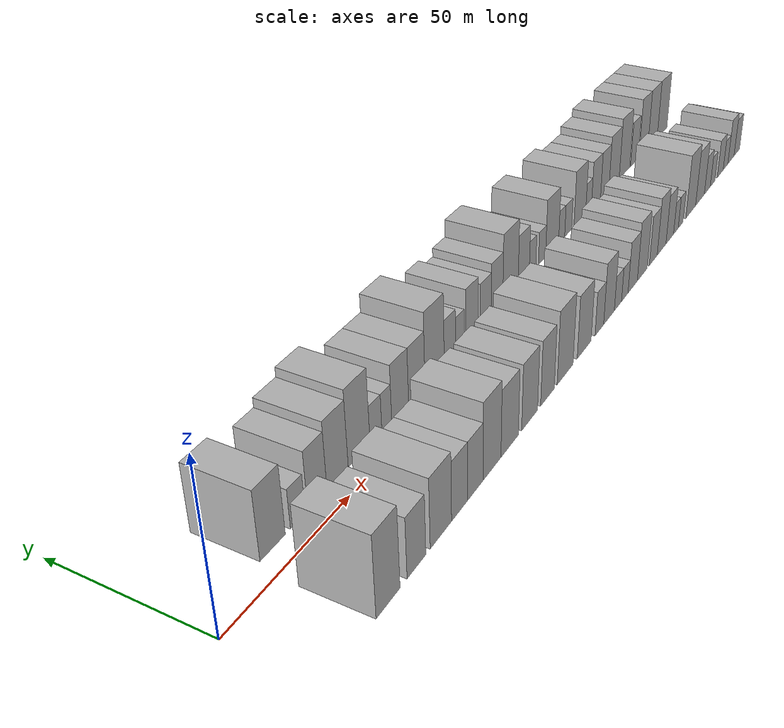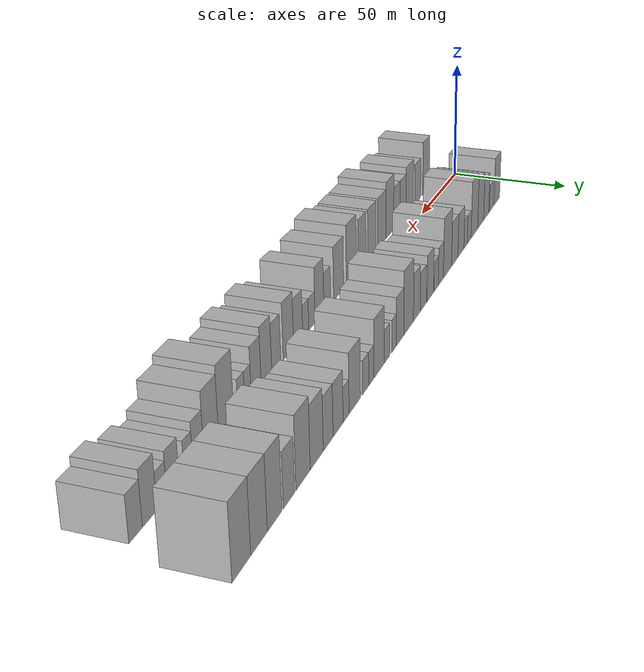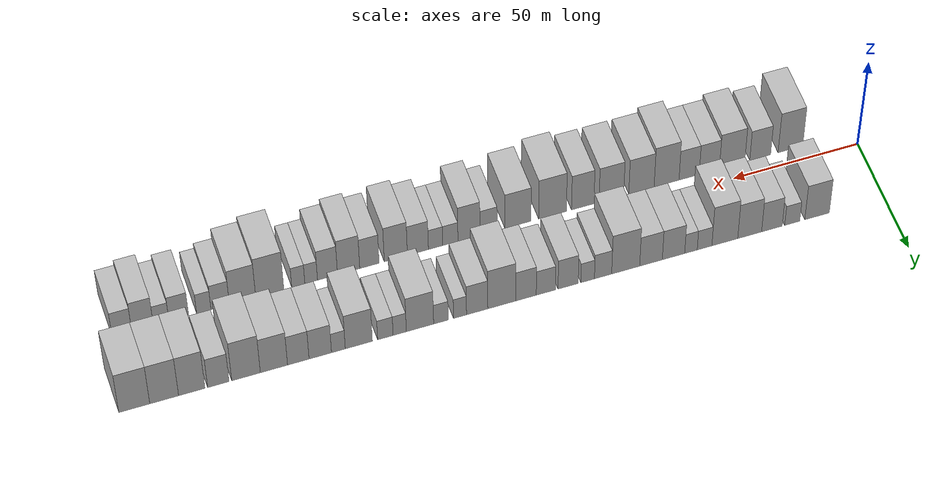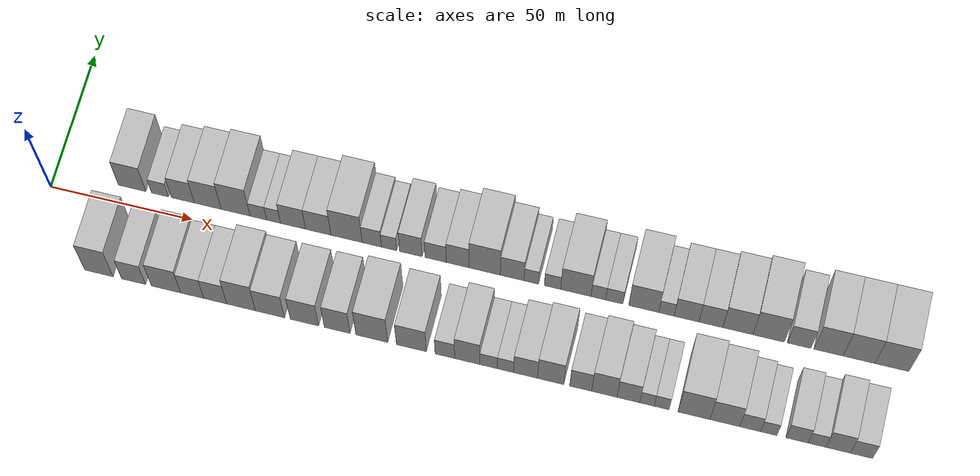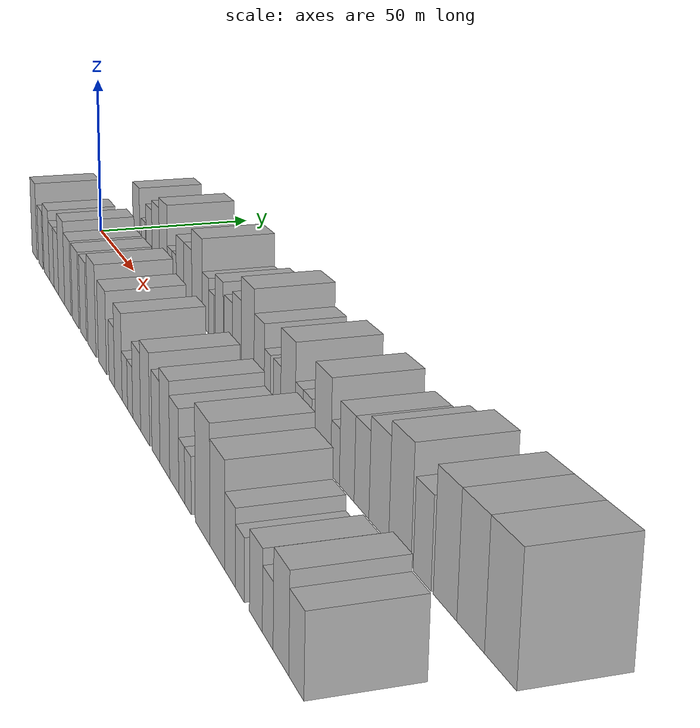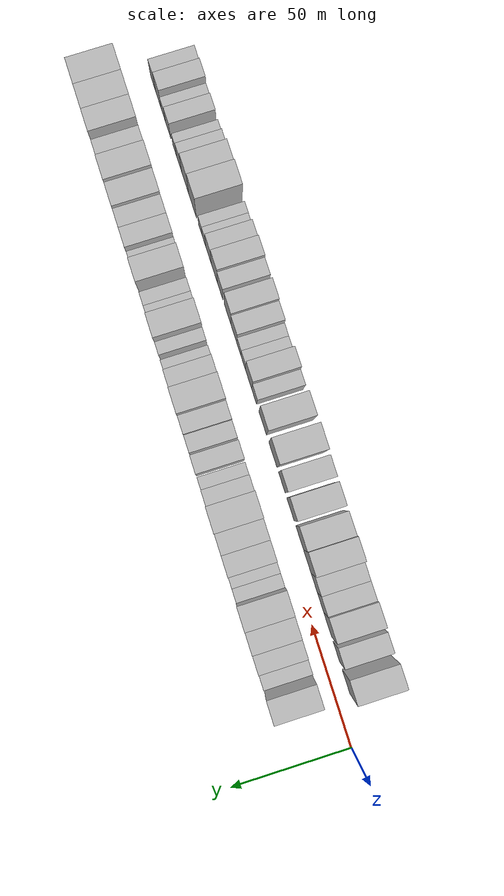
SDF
<sdf version="1.6">
 <world name="default">
  <scene>
   <sky><clouds><speed>12</speed></clouds></sky>
   <ambient>0.4 0.4 0.4 1</ambient>
   <background>0.7 0.7 0.7 1</background>
   <shadows>1</shadows>
  </scene>
  <gravity>0 0 -9.8066</gravity>
  <magnetic_field>6e-06 2.3e-05 -4.2e-05</magnetic_field>
  <physics default="0" name="default_physics" type="ode">
   <ode>
    <solver>
     <type>quick</type>
     <iters>10</iters>
     <sor>1.0</sor>
     <use_dynamic_moi_rescaling>0</use_dynamic_moi_rescaling>
    </solver>
    <constraints>
     <cfm>0</cfm>
     <erp>0.2</erp>
     <contact_max_correcting_vel>100</contact_max_correcting_vel>
     <contact_surface_layer>0.001</contact_surface_layer>
    </constraints>
   </ode>
   <max_step_size>0.004</max_step_size>
   <real_time_factor>1</real_time_factor>
   <real_time_update_rate>250</real_time_update_rate>
  </physics>
  <light name="sun" type="directional">
   <pose>0 0 10 0 0 0</pose>
   <diffuse>0.8 0.8 0.8 1</diffuse>
   <specular>0.2 0.2 0.2 1</specular>
   <attenuation>
    <range>1000</range>
    <constant>0.9</constant>
    <linear>0.01</linear>
    <quadratic>0.001</quadratic>
   </attenuation>
   <direction>-0.5 0.1 -0.9</direction>
  </light>
  <model name="building_1">
   <static>1</static>
   <pose>26.8678 16.0000 0 0.000000 0.000000 1.570796</pose>
   <link name="link">
    <pose>0 0 10.50 0 0 0</pose>
    <collision name="collision"><geometry><box><size>20.0000 9.7355 21.0000</size></box></geometry></collision>
    <visual name="visual">
     <cast_shadows>0</cast_shadows>
     <geometry><box><size>20.0000 9.7355 21.0000</size></box></geometry>
     <material>
      <script>
       <uri>model://HANNAS_wall/materials/scripts</uri>
       <uri>model://HANNAS_wall/materials/textures</uri>
       <name>vrc/HANNAS_wall</name>
      </script>
     </material>
    </visual>
   </link>
  </model>
  <model name="building_2">
   <static>1</static>
   <pose>36.7343 16.0000 0 0.000000 0.000000 1.570796</pose>
   <link name="link">
    <pose>0 0 6.00 0 0 0</pose>
    <collision name="collision"><geometry><box><size>20.0000 5.9977 12.0000</size></box></geometry></collision>
    <visual name="visual">
     <cast_shadows>0</cast_shadows>
     <geometry><box><size>20.0000 5.9977 12.0000</size></box></geometry>
     <material>
      <script>
       <uri>model://HANNAS_wall/materials/scripts</uri>
       <uri>model://HANNAS_wall/materials/textures</uri>
       <name>vrc/HANNAS_wall</name>
      </script>
     </material>
    </visual>
   </link>
  </model>
  <model name="building_3">
   <static>1</static>
   <pose>44.8047 16.0000 0 0.000000 0.000000 1.570796</pose>
   <link name="link">
    <pose>0 0 9.00 0 0 0</pose>
    <collision name="collision"><geometry><box><size>20.0000 8.1430 18.0000</size></box></geometry></collision>
    <visual name="visual">
     <cast_shadows>0</cast_shadows>
     <geometry><box><size>20.0000 8.1430 18.0000</size></box></geometry>
     <material>
      <script>
       <uri>model://HANNAS_wall/materials/scripts</uri>
       <uri>model://HANNAS_wall/materials/textures</uri>
       <name>vrc/HANNAS_wall</name>
      </script>
     </material>
    </visual>
   </link>
  </model>
  <model name="building_4">
   <static>1</static>
   <pose>53.6016 16.0000 0 0.000000 0.000000 1.570796</pose>
   <link name="link">
    <pose>0 0 10.50 0 0 0</pose>
    <collision name="collision"><geometry><box><size>20.0000 9.4507 21.0000</size></box></geometry></collision>
    <visual name="visual">
     <cast_shadows>0</cast_shadows>
     <geometry><box><size>20.0000 9.4507 21.0000</size></box></geometry>
     <material>
      <script>
       <uri>model://HANNAS_wall/materials/scripts</uri>
       <uri>model://HANNAS_wall/materials/textures</uri>
       <name>vrc/HANNAS_wall</name>
      </script>
     </material>
    </visual>
   </link>
  </model>
  <model name="building_5">
   <static>1</static>
   <pose>63.4222 16.0000 0 0.000000 0.000000 1.570796</pose>
   <link name="link">
    <pose>0 0 12.00 0 0 0</pose>
    <collision name="collision"><geometry><box><size>20.0000 10.1907 24.0000</size></box></geometry></collision>
    <visual name="visual">
     <cast_shadows>0</cast_shadows>
     <geometry><box><size>20.0000 10.1907 24.0000</size></box></geometry>
     <material>
      <script>
       <uri>model://HANNAS_wall/materials/scripts</uri>
       <uri>model://HANNAS_wall/materials/textures</uri>
       <name>vrc/HANNAS_wall</name>
      </script>
     </material>
    </visual>
   </link>
  </model>
  <model name="building_6">
   <static>1</static>
   <pose>71.3958 16.0000 0 0.000000 0.000000 1.570796</pose>
   <link name="link">
    <pose>0 0 6.00 0 0 0</pose>
    <collision name="collision"><geometry><box><size>20.0000 5.7564 12.0000</size></box></geometry></collision>
    <visual name="visual">
     <cast_shadows>0</cast_shadows>
     <geometry><box><size>20.0000 5.7564 12.0000</size></box></geometry>
     <material>
      <script>
       <uri>model://HANNAS_wall/materials/scripts</uri>
       <uri>model://HANNAS_wall/materials/textures</uri>
       <name>vrc/HANNAS_wall</name>
      </script>
     </material>
    </visual>
   </link>
  </model>
  <model name="building_7">
   <static>1</static>
   <pose>76.7380 16.0000 0 0.000000 0.000000 1.570796</pose>
   <link name="link">
    <pose>0 0 6.00 0 0 0</pose>
    <collision name="collision"><geometry><box><size>20.0000 4.9280 12.0000</size></box></geometry></collision>
    <visual name="visual">
     <cast_shadows>0</cast_shadows>
     <geometry><box><size>20.0000 4.9280 12.0000</size></box></geometry>
     <material>
      <script>
       <uri>model://HANNAS_wall/materials/scripts</uri>
       <uri>model://HANNAS_wall/materials/textures</uri>
       <name>vrc/HANNAS_wall</name>
      </script>
     </material>
    </visual>
   </link>
  </model>
  <model name="building_8">
   <static>1</static>
   <pose>83.5865 16.0000 0 0.000000 0.000000 1.570796</pose>
   <link name="link">
    <pose>0 0 9.00 0 0 0</pose>
    <collision name="collision"><geometry><box><size>20.0000 8.7689 18.0000</size></box></geometry></collision>
    <visual name="visual">
     <cast_shadows>0</cast_shadows>
     <geometry><box><size>20.0000 8.7689 18.0000</size></box></geometry>
     <material>
      <script>
       <uri>model://HANNAS_wall/materials/scripts</uri>
       <uri>model://HANNAS_wall/materials/textures</uri>
       <name>vrc/HANNAS_wall</name>
      </script>
     </material>
    </visual>
   </link>
  </model>
  <model name="building_9">
   <static>1</static>
   <pose>92.3989 16.0000 0 0.000000 0.000000 1.570796</pose>
   <link name="link">
    <pose>0 0 9.00 0 0 0</pose>
    <collision name="collision"><geometry><box><size>20.0000 8.8559 18.0000</size></box></geometry></collision>
    <visual name="visual">
     <cast_shadows>0</cast_shadows>
     <geometry><box><size>20.0000 8.8559 18.0000</size></box></geometry>
     <material>
      <script>
       <uri>model://HANNAS_wall/materials/scripts</uri>
       <uri>model://HANNAS_wall/materials/textures</uri>
       <name>vrc/HANNAS_wall</name>
      </script>
     </material>
    </visual>
   </link>
  </model>
  <model name="building_10">
   <static>1</static>
   <pose>102.2960 16.0000 0 0.000000 0.000000 1.570796</pose>
   <link name="link">
    <pose>0 0 12.00 0 0 0</pose>
    <collision name="collision"><geometry><box><size>20.0000 10.9383 24.0000</size></box></geometry></collision>
    <visual name="visual">
     <cast_shadows>0</cast_shadows>
     <geometry><box><size>20.0000 10.9383 24.0000</size></box></geometry>
     <material>
      <script>
       <uri>model://HANNAS_wall/materials/scripts</uri>
       <uri>model://HANNAS_wall/materials/textures</uri>
       <name>vrc/HANNAS_wall</name>
      </script>
     </material>
    </visual>
   </link>
  </model>
  <model name="building_11">
   <static>1</static>
   <pose>111.1189 16.0000 0 0.000000 0.000000 1.570796</pose>
   <link name="link">
    <pose>0 0 7.50 0 0 0</pose>
    <collision name="collision"><geometry><box><size>20.0000 6.7076 15.0000</size></box></geometry></collision>
    <visual name="visual">
     <cast_shadows>0</cast_shadows>
     <geometry><box><size>20.0000 6.7076 15.0000</size></box></geometry>
     <material>
      <script>
       <uri>model://HANNAS_wall/materials/scripts</uri>
       <uri>model://HANNAS_wall/materials/textures</uri>
       <name>vrc/HANNAS_wall</name>
      </script>
     </material>
    </visual>
   </link>
  </model>
  <model name="building_12">
   <static>1</static>
   <pose>117.1135 16.0000 0 0.000000 0.000000 1.570796</pose>
   <link name="link">
    <pose>0 0 6.00 0 0 0</pose>
    <collision name="collision"><geometry><box><size>20.0000 5.2814 12.0000</size></box></geometry></collision>
    <visual name="visual">
     <cast_shadows>0</cast_shadows>
     <geometry><box><size>20.0000 5.2814 12.0000</size></box></geometry>
     <material>
      <script>
       <uri>model://HANNAS_wall/materials/scripts</uri>
       <uri>model://HANNAS_wall/materials/textures</uri>
       <name>vrc/HANNAS_wall</name>
      </script>
     </material>
    </visual>
   </link>
  </model>
  <model name="building_13">
   <static>1</static>
   <pose>124.6767 16.0000 0 0.000000 0.000000 1.570796</pose>
   <link name="link">
    <pose>0 0 9.00 0 0 0</pose>
    <collision name="collision"><geometry><box><size>20.0000 7.8451 18.0000</size></box></geometry></collision>
    <visual name="visual">
     <cast_shadows>0</cast_shadows>
     <geometry><box><size>20.0000 7.8451 18.0000</size></box></geometry>
     <material>
      <script>
       <uri>model://HANNAS_wall/materials/scripts</uri>
       <uri>model://HANNAS_wall/materials/textures</uri>
       <name>vrc/HANNAS_wall</name>
      </script>
     </material>
    </visual>
   </link>
  </model>
  <model name="building_14">
   <static>1</static>
   <pose>133.3058 16.0000 0 0.000000 0.000000 1.570796</pose>
   <link name="link">
    <pose>0 0 7.50 0 0 0</pose>
    <collision name="collision"><geometry><box><size>20.0000 7.4131 15.0000</size></box></geometry></collision>
    <visual name="visual">
     <cast_shadows>0</cast_shadows>
     <geometry><box><size>20.0000 7.4131 15.0000</size></box></geometry>
     <material>
      <script>
       <uri>model://HANNAS_wall/materials/scripts</uri>
       <uri>model://HANNAS_wall/materials/textures</uri>
       <name>vrc/HANNAS_wall</name>
      </script>
     </material>
    </visual>
   </link>
  </model>
  <model name="building_15">
   <static>1</static>
   <pose>140.9265 16.0000 0 0.000000 0.000000 1.570796</pose>
   <link name="link">
    <pose>0 0 9.00 0 0 0</pose>
    <collision name="collision"><geometry><box><size>20.0000 7.8284 18.0000</size></box></geometry></collision>
    <visual name="visual">
     <cast_shadows>0</cast_shadows>
     <geometry><box><size>20.0000 7.8284 18.0000</size></box></geometry>
     <material>
      <script>
       <uri>model://HANNAS_wall/materials/scripts</uri>
       <uri>model://HANNAS_wall/materials/textures</uri>
       <name>vrc/HANNAS_wall</name>
      </script>
     </material>
    </visual>
   </link>
  </model>
  <model name="building_16">
   <static>1</static>
   <pose>150.2544 16.0000 0 0.000000 0.000000 1.570796</pose>
   <link name="link">
    <pose>0 0 12.00 0 0 0</pose>
    <collision name="collision"><geometry><box><size>20.0000 10.8273 24.0000</size></box></geometry></collision>
    <visual name="visual">
     <cast_shadows>0</cast_shadows>
     <geometry><box><size>20.0000 10.8273 24.0000</size></box></geometry>
     <material>
      <script>
       <uri>model://HANNAS_wall/materials/scripts</uri>
       <uri>model://HANNAS_wall/materials/textures</uri>
       <name>vrc/HANNAS_wall</name>
      </script>
     </material>
    </visual>
   </link>
  </model>
  <model name="building_17">
   <static>1</static>
   <pose>159.7544 16.0000 0 0.000000 0.000000 1.570796</pose>
   <link name="link">
    <pose>0 0 9.00 0 0 0</pose>
    <collision name="collision"><geometry><box><size>20.0000 8.1728 18.0000</size></box></geometry></collision>
    <visual name="visual">
     <cast_shadows>0</cast_shadows>
     <geometry><box><size>20.0000 8.1728 18.0000</size></box></geometry>
     <material>
      <script>
       <uri>model://HANNAS_wall/materials/scripts</uri>
       <uri>model://HANNAS_wall/materials/textures</uri>
       <name>vrc/HANNAS_wall</name>
      </script>
     </material>
    </visual>
   </link>
  </model>
  <model name="building_18">
   <static>1</static>
   <pose>166.3292 16.0000 0 0.000000 0.000000 1.570796</pose>
   <link name="link">
    <pose>0 0 6.00 0 0 0</pose>
    <collision name="collision"><geometry><box><size>20.0000 4.9768 12.0000</size></box></geometry></collision>
    <visual name="visual">
     <cast_shadows>0</cast_shadows>
     <geometry><box><size>20.0000 4.9768 12.0000</size></box></geometry>
     <material>
      <script>
       <uri>model://HANNAS_wall/materials/scripts</uri>
       <uri>model://HANNAS_wall/materials/textures</uri>
       <name>vrc/HANNAS_wall</name>
      </script>
     </material>
    </visual>
   </link>
  </model>
  <model name="building_19">
   <static>1</static>
   <pose>173.6158 16.0000 0 0.000000 0.000000 1.570796</pose>
   <link name="link">
    <pose>0 0 6.00 0 0 0</pose>
    <collision name="collision"><geometry><box><size>20.0000 5.5964 12.0000</size></box></geometry></collision>
    <visual name="visual">
     <cast_shadows>0</cast_shadows>
     <geometry><box><size>20.0000 5.5964 12.0000</size></box></geometry>
     <material>
      <script>
       <uri>model://HANNAS_wall/materials/scripts</uri>
       <uri>model://HANNAS_wall/materials/textures</uri>
       <name>vrc/HANNAS_wall</name>
      </script>
     </material>
    </visual>
   </link>
  </model>
  <model name="building_20">
   <static>1</static>
   <pose>181.6294 16.0000 0 0.000000 0.000000 1.570796</pose>
   <link name="link">
    <pose>0 0 10.50 0 0 0</pose>
    <collision name="collision"><geometry><box><size>20.0000 10.4307 21.0000</size></box></geometry></collision>
    <visual name="visual">
     <cast_shadows>0</cast_shadows>
     <geometry><box><size>20.0000 10.4307 21.0000</size></box></geometry>
     <material>
      <script>
       <uri>model://HANNAS_wall/materials/scripts</uri>
       <uri>model://HANNAS_wall/materials/textures</uri>
       <name>vrc/HANNAS_wall</name>
      </script>
     </material>
    </visual>
   </link>
  </model>
  <model name="building_21">
   <static>1</static>
   <pose>189.3610 16.0000 0 0.000000 0.000000 1.570796</pose>
   <link name="link">
    <pose>0 0 6.00 0 0 0</pose>
    <collision name="collision"><geometry><box><size>20.0000 5.0324 12.0000</size></box></geometry></collision>
    <visual name="visual">
     <cast_shadows>0</cast_shadows>
     <geometry><box><size>20.0000 5.0324 12.0000</size></box></geometry>
     <material>
      <script>
       <uri>model://HANNAS_wall/materials/scripts</uri>
       <uri>model://HANNAS_wall/materials/textures</uri>
       <name>vrc/HANNAS_wall</name>
      </script>
     </material>
    </visual>
   </link>
  </model>
  <model name="building_22">
   <static>1</static>
   <pose>194.8133 16.0000 0 0.000000 0.000000 1.570796</pose>
   <link name="link">
    <pose>0 0 6.00 0 0 0</pose>
    <collision name="collision"><geometry><box><size>20.0000 5.8723 12.0000</size></box></geometry></collision>
    <visual name="visual">
     <cast_shadows>0</cast_shadows>
     <geometry><box><size>20.0000 5.8723 12.0000</size></box></geometry>
     <material>
      <script>
       <uri>model://HANNAS_wall/materials/scripts</uri>
       <uri>model://HANNAS_wall/materials/textures</uri>
       <name>vrc/HANNAS_wall</name>
      </script>
     </material>
    </visual>
   </link>
  </model>
  <model name="building_23">
   <static>1</static>
   <pose>204.8770 16.0000 0 0.000000 0.000000 1.570796</pose>
   <link name="link">
    <pose>0 0 10.50 0 0 0</pose>
    <collision name="collision"><geometry><box><size>20.0000 10.2549 21.0000</size></box></geometry></collision>
    <visual name="visual">
     <cast_shadows>0</cast_shadows>
     <geometry><box><size>20.0000 10.2549 21.0000</size></box></geometry>
     <material>
      <script>
       <uri>model://HANNAS_wall/materials/scripts</uri>
       <uri>model://HANNAS_wall/materials/textures</uri>
       <name>vrc/HANNAS_wall</name>
      </script>
     </material>
    </visual>
   </link>
  </model>
  <model name="building_24">
   <static>1</static>
   <pose>212.6080 16.0000 0 0.000000 0.000000 1.570796</pose>
   <link name="link">
    <pose>0 0 6.00 0 0 0</pose>
    <collision name="collision"><geometry><box><size>20.0000 5.2071 12.0000</size></box></geometry></collision>
    <visual name="visual">
     <cast_shadows>0</cast_shadows>
     <geometry><box><size>20.0000 5.2071 12.0000</size></box></geometry>
     <material>
      <script>
       <uri>model://HANNAS_wall/materials/scripts</uri>
       <uri>model://HANNAS_wall/materials/textures</uri>
       <name>vrc/HANNAS_wall</name>
      </script>
     </material>
    </visual>
   </link>
  </model>
  <model name="building_25">
   <static>1</static>
   <pose>219.4483 16.0000 0 0.000000 0.000000 1.570796</pose>
   <link name="link">
    <pose>0 0 9.00 0 0 0</pose>
    <collision name="collision"><geometry><box><size>20.0000 8.4737 18.0000</size></box></geometry></collision>
    <visual name="visual">
     <cast_shadows>0</cast_shadows>
     <geometry><box><size>20.0000 8.4737 18.0000</size></box></geometry>
     <material>
      <script>
       <uri>model://HANNAS_wall/materials/scripts</uri>
       <uri>model://HANNAS_wall/materials/textures</uri>
       <name>vrc/HANNAS_wall</name>
      </script>
     </material>
    </visual>
   </link>
  </model>
  <model name="building_26">
   <static>1</static>
   <pose>227.7353 16.0000 0 0.000000 0.000000 1.570796</pose>
   <link name="link">
    <pose>0 0 9.00 0 0 0</pose>
    <collision name="collision"><geometry><box><size>20.0000 8.1002 18.0000</size></box></geometry></collision>
    <visual name="visual">
     <cast_shadows>0</cast_shadows>
     <geometry><box><size>20.0000 8.1002 18.0000</size></box></geometry>
     <material>
      <script>
       <uri>model://HANNAS_wall/materials/scripts</uri>
       <uri>model://HANNAS_wall/materials/textures</uri>
       <name>vrc/HANNAS_wall</name>
      </script>
     </material>
    </visual>
   </link>
  </model>
  <model name="building_27">
   <static>1</static>
   <pose>236.8950 16.0000 0 0.000000 0.000000 1.570796</pose>
   <link name="link">
    <pose>0 0 10.50 0 0 0</pose>
    <collision name="collision"><geometry><box><size>20.0000 10.2192 21.0000</size></box></geometry></collision>
    <visual name="visual">
     <cast_shadows>0</cast_shadows>
     <geometry><box><size>20.0000 10.2192 21.0000</size></box></geometry>
     <material>
      <script>
       <uri>model://HANNAS_wall/materials/scripts</uri>
       <uri>model://HANNAS_wall/materials/textures</uri>
       <name>vrc/HANNAS_wall</name>
      </script>
     </material>
    </visual>
   </link>
  </model>
  <model name="building_28">
   <static>1</static>
   <pose>247.3557 16.0000 0 0.000000 0.000000 1.570796</pose>
   <link name="link">
    <pose>0 0 12.00 0 0 0</pose>
    <collision name="collision"><geometry><box><size>20.0000 10.7022 24.0000</size></box></geometry></collision>
    <visual name="visual">
     <cast_shadows>0</cast_shadows>
     <geometry><box><size>20.0000 10.7022 24.0000</size></box></geometry>
     <material>
      <script>
       <uri>model://HANNAS_wall/materials/scripts</uri>
       <uri>model://HANNAS_wall/materials/textures</uri>
       <name>vrc/HANNAS_wall</name>
      </script>
     </material>
    </visual>
   </link>
  </model>
  <model name="building_29">
   <static>1</static>
   <pose>257.7020 16.0000 0 0.000000 0.000000 1.570796</pose>
   <link name="link">
    <pose>0 0 9.00 0 0 0</pose>
    <collision name="collision"><geometry><box><size>20.0000 7.9903 18.0000</size></box></geometry></collision>
    <visual name="visual">
     <cast_shadows>0</cast_shadows>
     <geometry><box><size>20.0000 7.9903 18.0000</size></box></geometry>
     <material>
      <script>
       <uri>model://HANNAS_wall/materials/scripts</uri>
       <uri>model://HANNAS_wall/materials/textures</uri>
       <name>vrc/HANNAS_wall</name>
      </script>
     </material>
    </visual>
   </link>
  </model>
  <model name="building_30">
   <static>1</static>
   <pose>267.6080 16.0000 0 0.000000 0.000000 1.570796</pose>
   <link name="link">
    <pose>0 0 12.00 0 0 0</pose>
    <collision name="collision"><geometry><box><size>20.0000 9.8217 24.0000</size></box></geometry></collision>
    <visual name="visual">
     <cast_shadows>0</cast_shadows>
     <geometry><box><size>20.0000 9.8217 24.0000</size></box></geometry>
     <material>
      <script>
       <uri>model://HANNAS_wall/materials/scripts</uri>
       <uri>model://HANNAS_wall/materials/textures</uri>
       <name>vrc/HANNAS_wall</name>
      </script>
     </material>
    </visual>
   </link>
  </model>
  <model name="building_31">
   <static>1</static>
   <pose>277.8639 16.0000 0 0.000000 0.000000 1.570796</pose>
   <link name="link">
    <pose>0 0 12.00 0 0 0</pose>
    <collision name="collision"><geometry><box><size>20.0000 10.6902 24.0000</size></box></geometry></collision>
    <visual name="visual">
     <cast_shadows>0</cast_shadows>
     <geometry><box><size>20.0000 10.6902 24.0000</size></box></geometry>
     <material>
      <script>
       <uri>model://HANNAS_wall/materials/scripts</uri>
       <uri>model://HANNAS_wall/materials/textures</uri>
       <name>vrc/HANNAS_wall</name>
      </script>
     </material>
    </visual>
   </link>
  </model>
  <model name="building_32">
   <static>1</static>
   <pose>288.9384 16.0000 0 0.000000 0.000000 1.570796</pose>
   <link name="link">
    <pose>0 0 12.00 0 0 0</pose>
    <collision name="collision"><geometry><box><size>20.0000 11.4587 24.0000</size></box></geometry></collision>
    <visual name="visual">
     <cast_shadows>0</cast_shadows>
     <geometry><box><size>20.0000 11.4587 24.0000</size></box></geometry>
     <material>
      <script>
       <uri>model://HANNAS_wall/materials/scripts</uri>
       <uri>model://HANNAS_wall/materials/textures</uri>
       <name>vrc/HANNAS_wall</name>
      </script>
     </material>
    </visual>
   </link>
  </model>
  <model name="building_33">
   <static>1</static>
   <pose>24.9753 -16.0000 0 0.000000 0.000000 1.570796</pose>
   <link name="link">
    <pose>0 0 12.00 0 0 0</pose>
    <collision name="collision"><geometry><box><size>20.0000 9.9507 24.0000</size></box></geometry></collision>
    <visual name="visual">
     <cast_shadows>0</cast_shadows>
     <geometry><box><size>20.0000 9.9507 24.0000</size></box></geometry>
     <material>
      <script>
       <uri>model://HANNAS_wall/materials/scripts</uri>
       <uri>model://HANNAS_wall/materials/textures</uri>
       <name>vrc/HANNAS_wall</name>
      </script>
     </material>
    </visual>
   </link>
  </model>
  <model name="building_34">
   <static>1</static>
   <pose>37.1397 -16.0000 0 0.000000 0.000000 1.570796</pose>
   <link name="link">
    <pose>0 0 9.00 0 0 0</pose>
    <collision name="collision"><geometry><box><size>20.0000 8.3780 18.0000</size></box></geometry></collision>
    <visual name="visual">
     <cast_shadows>0</cast_shadows>
     <geometry><box><size>20.0000 8.3780 18.0000</size></box></geometry>
     <material>
      <script>
       <uri>model://HANNAS_wall/materials/scripts</uri>
       <uri>model://HANNAS_wall/materials/textures</uri>
       <name>vrc/HANNAS_wall</name>
      </script>
     </material>
    </visual>
   </link>
  </model>
  <model name="building_35">
   <static>1</static>
   <pose>48.4142 -16.0000 0 0.000000 0.000000 1.570796</pose>
   <link name="link">
    <pose>0 0 10.50 0 0 0</pose>
    <collision name="collision"><geometry><box><size>20.0000 10.1710 21.0000</size></box></geometry></collision>
    <visual name="visual">
     <cast_shadows>0</cast_shadows>
     <geometry><box><size>20.0000 10.1710 21.0000</size></box></geometry>
     <material>
      <script>
       <uri>model://HANNAS_wall/materials/scripts</uri>
       <uri>model://HANNAS_wall/materials/textures</uri>
       <name>vrc/HANNAS_wall</name>
      </script>
     </material>
    </visual>
   </link>
  </model>
  <model name="building_36">
   <static>1</static>
   <pose>57.5321 -16.0000 0 0.000000 0.000000 1.570796</pose>
   <link name="link">
    <pose>0 0 9.00 0 0 0</pose>
    <collision name="collision"><geometry><box><size>20.0000 8.0647 18.0000</size></box></geometry></collision>
    <visual name="visual">
     <cast_shadows>0</cast_shadows>
     <geometry><box><size>20.0000 8.0647 18.0000</size></box></geometry>
     <material>
      <script>
       <uri>model://HANNAS_wall/materials/scripts</uri>
       <uri>model://HANNAS_wall/materials/textures</uri>
       <name>vrc/HANNAS_wall</name>
      </script>
     </material>
    </visual>
   </link>
  </model>
  <model name="building_37">
   <static>1</static>
   <pose>65.5842 -16.0000 0 0.000000 0.000000 1.570796</pose>
   <link name="link">
    <pose>0 0 9.00 0 0 0</pose>
    <collision name="collision"><geometry><box><size>20.0000 8.0394 18.0000</size></box></geometry></collision>
    <visual name="visual">
     <cast_shadows>0</cast_shadows>
     <geometry><box><size>20.0000 8.0394 18.0000</size></box></geometry>
     <material>
      <script>
       <uri>model://HANNAS_wall/materials/scripts</uri>
       <uri>model://HANNAS_wall/materials/textures</uri>
       <name>vrc/HANNAS_wall</name>
      </script>
     </material>
    </visual>
   </link>
  </model>
  <model name="building_38">
   <static>1</static>
   <pose>74.5528 -16.0000 0 0.000000 0.000000 1.570796</pose>
   <link name="link">
    <pose>0 0 12.00 0 0 0</pose>
    <collision name="collision"><geometry><box><size>20.0000 9.8979 24.0000</size></box></geometry></collision>
    <visual name="visual">
     <cast_shadows>0</cast_shadows>
     <geometry><box><size>20.0000 9.8979 24.0000</size></box></geometry>
     <material>
      <script>
       <uri>model://HANNAS_wall/materials/scripts</uri>
       <uri>model://HANNAS_wall/materials/textures</uri>
       <name>vrc/HANNAS_wall</name>
      </script>
     </material>
    </visual>
   </link>
  </model>
  <model name="building_39">
   <static>1</static>
   <pose>84.5356 -16.0000 0 0.000000 0.000000 1.570796</pose>
   <link name="link">
    <pose>0 0 10.50 0 0 0</pose>
    <collision name="collision"><geometry><box><size>20.0000 10.0675 21.0000</size></box></geometry></collision>
    <visual name="visual">
     <cast_shadows>0</cast_shadows>
     <geometry><box><size>20.0000 10.0675 21.0000</size></box></geometry>
     <material>
      <script>
       <uri>model://HANNAS_wall/materials/scripts</uri>
       <uri>model://HANNAS_wall/materials/textures</uri>
       <name>vrc/HANNAS_wall</name>
      </script>
     </material>
    </visual>
   </link>
  </model>
  <model name="building_40">
   <static>1</static>
   <pose>96.4479 -16.0000 0 0.000000 0.000000 1.570796</pose>
   <link name="link">
    <pose>0 0 10.50 0 0 0</pose>
    <collision name="collision"><geometry><box><size>20.0000 9.7572 21.0000</size></box></geometry></collision>
    <visual name="visual">
     <cast_shadows>0</cast_shadows>
     <geometry><box><size>20.0000 9.7572 21.0000</size></box></geometry>
     <material>
      <script>
       <uri>model://HANNAS_wall/materials/scripts</uri>
       <uri>model://HANNAS_wall/materials/textures</uri>
       <name>vrc/HANNAS_wall</name>
      </script>
     </material>
    </visual>
   </link>
  </model>
  <model name="building_41">
   <static>1</static>
   <pose>107.7494 -16.0000 0 0.000000 0.000000 1.570796</pose>
   <link name="link">
    <pose>0 0 10.50 0 0 0</pose>
    <collision name="collision"><geometry><box><size>20.0000 8.8458 21.0000</size></box></geometry></collision>
    <visual name="visual">
     <cast_shadows>0</cast_shadows>
     <geometry><box><size>20.0000 8.8458 21.0000</size></box></geometry>
     <material>
      <script>
       <uri>model://HANNAS_wall/materials/scripts</uri>
       <uri>model://HANNAS_wall/materials/textures</uri>
       <name>vrc/HANNAS_wall</name>
      </script>
     </material>
    </visual>
   </link>
  </model>
  <model name="building_42">
   <static>1</static>
   <pose>119.6240 -16.0000 0 0.000000 0.000000 1.570796</pose>
   <link name="link">
    <pose>0 0 12.00 0 0 0</pose>
    <collision name="collision"><geometry><box><size>20.0000 10.9033 24.0000</size></box></geometry></collision>
    <visual name="visual">
     <cast_shadows>0</cast_shadows>
     <geometry><box><size>20.0000 10.9033 24.0000</size></box></geometry>
     <material>
      <script>
       <uri>model://HANNAS_wall/materials/scripts</uri>
       <uri>model://HANNAS_wall/materials/textures</uri>
       <name>vrc/HANNAS_wall</name>
      </script>
     </material>
    </visual>
   </link>
  </model>
  <model name="building_43">
   <static>1</static>
   <pose>133.1922 -16.0000 0 0.000000 0.000000 1.570796</pose>
   <link name="link">
    <pose>0 0 10.50 0 0 0</pose>
    <collision name="collision"><geometry><box><size>20.0000 10.2332 21.0000</size></box></geometry></collision>
    <visual name="visual">
     <cast_shadows>0</cast_shadows>
     <geometry><box><size>20.0000 10.2332 21.0000</size></box></geometry>
     <material>
      <script>
       <uri>model://HANNAS_wall/materials/scripts</uri>
       <uri>model://HANNAS_wall/materials/textures</uri>
       <name>vrc/HANNAS_wall</name>
      </script>
     </material>
    </visual>
   </link>
  </model>
  <model name="building_44">
   <static>1</static>
   <pose>144.6435 -16.0000 0 0.000000 0.000000 1.570796</pose>
   <link name="link">
    <pose>0 0 7.50 0 0 0</pose>
    <collision name="collision"><geometry><box><size>20.0000 6.6694 15.0000</size></box></geometry></collision>
    <visual name="visual">
     <cast_shadows>0</cast_shadows>
     <geometry><box><size>20.0000 6.6694 15.0000</size></box></geometry>
     <material>
      <script>
       <uri>model://HANNAS_wall/materials/scripts</uri>
       <uri>model://HANNAS_wall/materials/textures</uri>
       <name>vrc/HANNAS_wall</name>
      </script>
     </material>
    </visual>
   </link>
  </model>
  <model name="building_45">
   <static>1</static>
   <pose>152.2699 -16.0000 0 0.000000 0.000000 1.570796</pose>
   <link name="link">
    <pose>0 0 10.50 0 0 0</pose>
    <collision name="collision"><geometry><box><size>20.0000 8.5835 21.0000</size></box></geometry></collision>
    <visual name="visual">
     <cast_shadows>0</cast_shadows>
     <geometry><box><size>20.0000 8.5835 21.0000</size></box></geometry>
     <material>
      <script>
       <uri>model://HANNAS_wall/materials/scripts</uri>
       <uri>model://HANNAS_wall/materials/textures</uri>
       <name>vrc/HANNAS_wall</name>
      </script>
     </material>
    </visual>
   </link>
  </model>
  <model name="building_46">
   <static>1</static>
   <pose>159.5276 -16.0000 0 0.000000 0.000000 1.570796</pose>
   <link name="link">
    <pose>0 0 6.00 0 0 0</pose>
    <collision name="collision"><geometry><box><size>20.0000 5.9319 12.0000</size></box></geometry></collision>
    <visual name="visual">
     <cast_shadows>0</cast_shadows>
     <geometry><box><size>20.0000 5.9319 12.0000</size></box></geometry>
     <material>
      <script>
       <uri>model://HANNAS_wall/materials/scripts</uri>
       <uri>model://HANNAS_wall/materials/textures</uri>
       <name>vrc/HANNAS_wall</name>
      </script>
     </material>
    </visual>
   </link>
  </model>
  <model name="building_47">
   <static>1</static>
   <pose>165.2591 -16.0000 0 0.000000 0.000000 1.570796</pose>
   <link name="link">
    <pose>0 0 6.00 0 0 0</pose>
    <collision name="collision"><geometry><box><size>20.0000 5.5311 12.0000</size></box></geometry></collision>
    <visual name="visual">
     <cast_shadows>0</cast_shadows>
     <geometry><box><size>20.0000 5.5311 12.0000</size></box></geometry>
     <material>
      <script>
       <uri>model://HANNAS_wall/materials/scripts</uri>
       <uri>model://HANNAS_wall/materials/textures</uri>
       <name>vrc/HANNAS_wall</name>
      </script>
     </material>
    </visual>
   </link>
  </model>
  <model name="building_48">
   <static>1</static>
   <pose>172.0974 -16.0000 0 0.000000 0.000000 1.570796</pose>
   <link name="link">
    <pose>0 0 9.00 0 0 0</pose>
    <collision name="collision"><geometry><box><size>20.0000 8.1456 18.0000</size></box></geometry></collision>
    <visual name="visual">
     <cast_shadows>0</cast_shadows>
     <geometry><box><size>20.0000 8.1456 18.0000</size></box></geometry>
     <material>
      <script>
       <uri>model://HANNAS_wall/materials/scripts</uri>
       <uri>model://HANNAS_wall/materials/textures</uri>
       <name>vrc/HANNAS_wall</name>
      </script>
     </material>
    </visual>
   </link>
  </model>
  <model name="building_49">
   <static>1</static>
   <pose>180.6289 -16.0000 0 0.000000 0.000000 1.570796</pose>
   <link name="link">
    <pose>0 0 10.50 0 0 0</pose>
    <collision name="collision"><geometry><box><size>20.0000 8.9173 21.0000</size></box></geometry></collision>
    <visual name="visual">
     <cast_shadows>0</cast_shadows>
     <geometry><box><size>20.0000 8.9173 21.0000</size></box></geometry>
     <material>
      <script>
       <uri>model://HANNAS_wall/materials/scripts</uri>
       <uri>model://HANNAS_wall/materials/textures</uri>
       <name>vrc/HANNAS_wall</name>
      </script>
     </material>
    </visual>
   </link>
  </model>
  <model name="building_50">
   <static>1</static>
   <pose>190.8117 -16.0000 0 0.000000 0.000000 1.570796</pose>
   <link name="link">
    <pose>0 0 9.00 0 0 0</pose>
    <collision name="collision"><geometry><box><size>20.0000 7.4483 18.0000</size></box></geometry></collision>
    <visual name="visual">
     <cast_shadows>0</cast_shadows>
     <geometry><box><size>20.0000 7.4483 18.0000</size></box></geometry>
     <material>
      <script>
       <uri>model://HANNAS_wall/materials/scripts</uri>
       <uri>model://HANNAS_wall/materials/textures</uri>
       <name>vrc/HANNAS_wall</name>
      </script>
     </material>
    </visual>
   </link>
  </model>
  <model name="building_51">
   <static>1</static>
   <pose>198.8058 -16.0000 0 0.000000 0.000000 1.570796</pose>
   <link name="link">
    <pose>0 0 10.50 0 0 0</pose>
    <collision name="collision"><geometry><box><size>20.0000 8.5399 21.0000</size></box></geometry></collision>
    <visual name="visual">
     <cast_shadows>0</cast_shadows>
     <geometry><box><size>20.0000 8.5399 21.0000</size></box></geometry>
     <material>
      <script>
       <uri>model://HANNAS_wall/materials/scripts</uri>
       <uri>model://HANNAS_wall/materials/textures</uri>
       <name>vrc/HANNAS_wall</name>
      </script>
     </material>
    </visual>
   </link>
  </model>
  <model name="building_52">
   <static>1</static>
   <pose>206.9073 -16.0000 0 0.000000 0.000000 1.570796</pose>
   <link name="link">
    <pose>0 0 9.00 0 0 0</pose>
    <collision name="collision"><geometry><box><size>20.0000 7.6631 18.0000</size></box></geometry></collision>
    <visual name="visual">
     <cast_shadows>0</cast_shadows>
     <geometry><box><size>20.0000 7.6631 18.0000</size></box></geometry>
     <material>
      <script>
       <uri>model://HANNAS_wall/materials/scripts</uri>
       <uri>model://HANNAS_wall/materials/textures</uri>
       <name>vrc/HANNAS_wall</name>
      </script>
     </material>
    </visual>
   </link>
  </model>
  <model name="building_53">
   <static>1</static>
   <pose>213.1612 -16.0000 0 0.000000 0.000000 1.570796</pose>
   <link name="link">
    <pose>0 0 6.00 0 0 0</pose>
    <collision name="collision"><geometry><box><size>20.0000 4.8447 12.0000</size></box></geometry></collision>
    <visual name="visual">
     <cast_shadows>0</cast_shadows>
     <geometry><box><size>20.0000 4.8447 12.0000</size></box></geometry>
     <material>
      <script>
       <uri>model://HANNAS_wall/materials/scripts</uri>
       <uri>model://HANNAS_wall/materials/textures</uri>
       <name>vrc/HANNAS_wall</name>
      </script>
     </material>
    </visual>
   </link>
  </model>
  <model name="building_54">
   <static>1</static>
   <pose>218.0965 -16.0000 0 0.000000 0.000000 1.570796</pose>
   <link name="link">
    <pose>0 0 6.00 0 0 0</pose>
    <collision name="collision"><geometry><box><size>20.0000 5.0258 12.0000</size></box></geometry></collision>
    <visual name="visual">
     <cast_shadows>0</cast_shadows>
     <geometry><box><size>20.0000 5.0258 12.0000</size></box></geometry>
     <material>
      <script>
       <uri>model://HANNAS_wall/materials/scripts</uri>
       <uri>model://HANNAS_wall/materials/textures</uri>
       <name>vrc/HANNAS_wall</name>
      </script>
     </material>
    </visual>
   </link>
  </model>
  <model name="building_55">
   <static>1</static>
   <pose>228.9651 -16.0000 0 0.000000 0.000000 1.570796</pose>
   <link name="link">
    <pose>0 0 12.00 0 0 0</pose>
    <collision name="collision"><geometry><box><size>20.0000 10.7114 24.0000</size></box></geometry></collision>
    <visual name="visual">
     <cast_shadows>0</cast_shadows>
     <geometry><box><size>20.0000 10.7114 24.0000</size></box></geometry>
     <material>
      <script>
       <uri>model://HANNAS_wall/materials/scripts</uri>
       <uri>model://HANNAS_wall/materials/textures</uri>
       <name>vrc/HANNAS_wall</name>
      </script>
     </material>
    </visual>
   </link>
  </model>
  <model name="building_56">
   <static>1</static>
   <pose>239.3212 -16.0000 0 0.000000 0.000000 1.570796</pose>
   <link name="link">
    <pose>0 0 10.50 0 0 0</pose>
    <collision name="collision"><geometry><box><size>20.0000 10.0007 21.0000</size></box></geometry></collision>
    <visual name="visual">
     <cast_shadows>0</cast_shadows>
     <geometry><box><size>20.0000 10.0007 21.0000</size></box></geometry>
     <material>
      <script>
       <uri>model://HANNAS_wall/materials/scripts</uri>
       <uri>model://HANNAS_wall/materials/textures</uri>
       <name>vrc/HANNAS_wall</name>
      </script>
     </material>
    </visual>
   </link>
  </model>
  <model name="building_57">
   <static>1</static>
   <pose>247.8029 -16.0000 0 0.000000 0.000000 1.570796</pose>
   <link name="link">
    <pose>0 0 7.50 0 0 0</pose>
    <collision name="collision"><geometry><box><size>20.0000 6.9627 15.0000</size></box></geometry></collision>
    <visual name="visual">
     <cast_shadows>0</cast_shadows>
     <geometry><box><size>20.0000 6.9627 15.0000</size></box></geometry>
     <material>
      <script>
       <uri>model://HANNAS_wall/materials/scripts</uri>
       <uri>model://HANNAS_wall/materials/textures</uri>
       <name>vrc/HANNAS_wall</name>
      </script>
     </material>
    </visual>
   </link>
  </model>
  <model name="building_58">
   <static>1</static>
   <pose>254.0057 -16.0000 0 0.000000 0.000000 1.570796</pose>
   <link name="link">
    <pose>0 0 6.00 0 0 0</pose>
    <collision name="collision"><geometry><box><size>20.0000 5.4431 12.0000</size></box></geometry></collision>
    <visual name="visual">
     <cast_shadows>0</cast_shadows>
     <geometry><box><size>20.0000 5.4431 12.0000</size></box></geometry>
     <material>
      <script>
       <uri>model://HANNAS_wall/materials/scripts</uri>
       <uri>model://HANNAS_wall/materials/textures</uri>
       <name>vrc/HANNAS_wall</name>
      </script>
     </material>
    </visual>
   </link>
  </model>
  <model name="building_59">
   <static>1</static>
   <pose>263.4447 -16.0000 0 0.000000 0.000000 1.570796</pose>
   <link name="link">
    <pose>0 0 7.50 0 0 0</pose>
    <collision name="collision"><geometry><box><size>20.0000 7.4348 15.0000</size></box></geometry></collision>
    <visual name="visual">
     <cast_shadows>0</cast_shadows>
     <geometry><box><size>20.0000 7.4348 15.0000</size></box></geometry>
     <material>
      <script>
       <uri>model://HANNAS_wall/materials/scripts</uri>
       <uri>model://HANNAS_wall/materials/textures</uri>
       <name>vrc/HANNAS_wall</name>
      </script>
     </material>
    </visual>
   </link>
  </model>
  <model name="building_60">
   <static>1</static>
   <pose>270.0912 -16.0000 0 0.000000 0.000000 1.570796</pose>
   <link name="link">
    <pose>0 0 6.00 0 0 0</pose>
    <collision name="collision"><geometry><box><size>20.0000 5.8582 12.0000</size></box></geometry></collision>
    <visual name="visual">
     <cast_shadows>0</cast_shadows>
     <geometry><box><size>20.0000 5.8582 12.0000</size></box></geometry>
     <material>
      <script>
       <uri>model://HANNAS_wall/materials/scripts</uri>
       <uri>model://HANNAS_wall/materials/textures</uri>
       <name>vrc/HANNAS_wall</name>
      </script>
     </material>
    </visual>
   </link>
  </model>
  <model name="building_61">
   <static>1</static>
   <pose>277.0783 -16.0000 0 0.000000 0.000000 1.570796</pose>
   <link name="link">
    <pose>0 0 9.00 0 0 0</pose>
    <collision name="collision"><geometry><box><size>20.0000 8.1160 18.0000</size></box></geometry></collision>
    <visual name="visual">
     <cast_shadows>0</cast_shadows>
     <geometry><box><size>20.0000 8.1160 18.0000</size></box></geometry>
     <material>
      <script>
       <uri>model://HANNAS_wall/materials/scripts</uri>
       <uri>model://HANNAS_wall/materials/textures</uri>
       <name>vrc/HANNAS_wall</name>
      </script>
     </material>
    </visual>
   </link>
  </model>
  <model name="building_62">
   <static>1</static>
   <pose>284.8334 -16.0000 0 0.000000 0.000000 1.570796</pose>
   <link name="link">
    <pose>0 0 7.50 0 0 0</pose>
    <collision name="collision"><geometry><box><size>20.0000 7.3942 15.0000</size></box></geometry></collision>
    <visual name="visual">
     <cast_shadows>0</cast_shadows>
     <geometry><box><size>20.0000 7.3942 15.0000</size></box></geometry>
     <material>
      <script>
       <uri>model://HANNAS_wall/materials/scripts</uri>
       <uri>model://HANNAS_wall/materials/textures</uri>
       <name>vrc/HANNAS_wall</name>
      </script>
     </material>
    </visual>
   </link>
  </model>
 </world>
</sdf>
